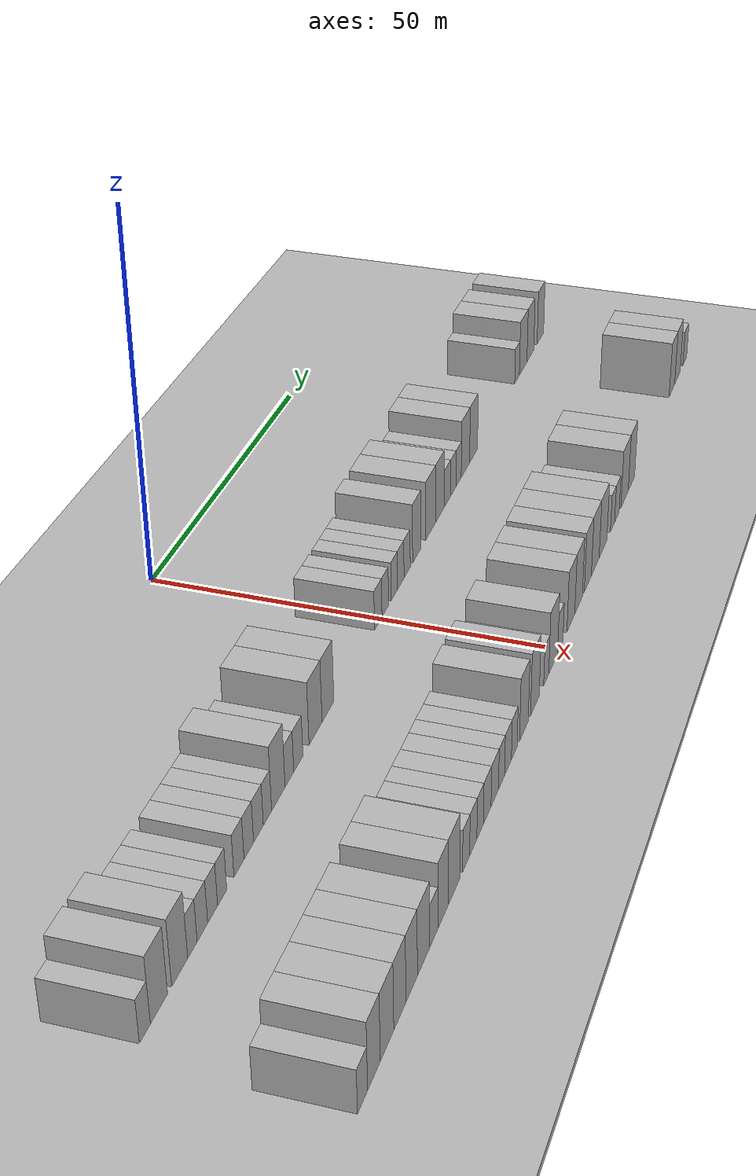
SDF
<sdf version="1.6">
 <world name="default">
  <include><name>ground_plane_1</name><uri>model://HANNAS_ground_plane</uri></include>
  <include>
   <name>ground_plane_2</name>
   <uri>model://HANNAS_ground_plane</uri>
   <pose>100 0 0  0 0 0</pose>
  </include>
  <model name="building_34">
   <static>1</static>
   <pose>25.0000 -71.9568 0 0.000000 0.000000 0.000000</pose>
   <link name="link">
    <pose>0 0 3.00 0 0 0</pose>
    <collision name="collision"><geometry><box><size>10.0000 2.5785 6.0000</size></box></geometry></collision>
    <visual name="visual">
     <cast_shadows>0</cast_shadows>
     <geometry><box><size>10.0000 2.5785 6.0000</size></box></geometry>
     <material>
      <script>
       <uri>model://HANNAS_wall/materials/scripts</uri>
       <uri>model://HANNAS_wall/materials/textures</uri>
       <name>vrc/HANNAS_wall</name>
      </script>
     </material>
    </visual>
   </link>
  </model>
  <model name="building_35">
   <static>1</static>
   <pose>25.0000 -68.5935 0 0.000000 0.000000 0.000000</pose>
   <link name="link">
    <pose>0 0 4.50 0 0 0</pose>
    <collision name="collision"><geometry><box><size>10.0000 4.1481 9.0000</size></box></geometry></collision>
    <visual name="visual">
     <cast_shadows>0</cast_shadows>
     <geometry><box><size>10.0000 4.1481 9.0000</size></box></geometry>
     <material>
      <script>
       <uri>model://HANNAS_wall/materials/scripts</uri>
       <uri>model://HANNAS_wall/materials/textures</uri>
       <name>vrc/HANNAS_wall</name>
      </script>
     </material>
    </visual>
   </link>
  </model>
  <model name="building_36">
   <static>1</static>
   <pose>25.0000 -63.5018 0 0.000000 0.000000 0.000000</pose>
   <link name="link">
    <pose>0 0 4.50 0 0 0</pose>
    <collision name="collision"><geometry><box><size>10.0000 4.0353 9.0000</size></box></geometry></collision>
    <visual name="visual">
     <cast_shadows>0</cast_shadows>
     <geometry><box><size>10.0000 4.0353 9.0000</size></box></geometry>
     <material>
      <script>
       <uri>model://HANNAS_wall/materials/scripts</uri>
       <uri>model://HANNAS_wall/materials/textures</uri>
       <name>vrc/HANNAS_wall</name>
      </script>
     </material>
    </visual>
   </link>
  </model>
  <model name="building_37">
   <static>1</static>
   <pose>25.0000 -60.2751 0 0.000000 0.000000 0.000000</pose>
   <link name="link">
    <pose>0 0 3.00 0 0 0</pose>
    <collision name="collision"><geometry><box><size>10.0000 2.4179 6.0000</size></box></geometry></collision>
    <visual name="visual">
     <cast_shadows>0</cast_shadows>
     <geometry><box><size>10.0000 2.4179 6.0000</size></box></geometry>
     <material>
      <script>
       <uri>model://HANNAS_wall/materials/scripts</uri>
       <uri>model://HANNAS_wall/materials/textures</uri>
       <name>vrc/HANNAS_wall</name>
      </script>
     </material>
    </visual>
   </link>
  </model>
  <model name="building_38">
   <static>1</static>
   <pose>25.0000 -57.6780 0 0.000000 0.000000 0.000000</pose>
   <link name="link">
    <pose>0 0 3.00 0 0 0</pose>
    <collision name="collision"><geometry><box><size>10.0000 2.7763 6.0000</size></box></geometry></collision>
    <visual name="visual">
     <cast_shadows>0</cast_shadows>
     <geometry><box><size>10.0000 2.7763 6.0000</size></box></geometry>
     <material>
      <script>
       <uri>model://HANNAS_wall/materials/scripts</uri>
       <uri>model://HANNAS_wall/materials/textures</uri>
       <name>vrc/HANNAS_wall</name>
      </script>
     </material>
    </visual>
   </link>
  </model>
  <model name="building_39">
   <static>1</static>
   <pose>25.0000 -54.9650 0 0.000000 0.000000 0.000000</pose>
   <link name="link">
    <pose>0 0 3.00 0 0 0</pose>
    <collision name="collision"><geometry><box><size>10.0000 2.6498 6.0000</size></box></geometry></collision>
    <visual name="visual">
     <cast_shadows>0</cast_shadows>
     <geometry><box><size>10.0000 2.6498 6.0000</size></box></geometry>
     <material>
      <script>
       <uri>model://HANNAS_wall/materials/scripts</uri>
       <uri>model://HANNAS_wall/materials/textures</uri>
       <name>vrc/HANNAS_wall</name>
      </script>
     </material>
    </visual>
   </link>
  </model>
  <model name="building_40">
   <static>1</static>
   <pose>25.0000 -52.3989 0 0.000000 0.000000 0.000000</pose>
   <link name="link">
    <pose>0 0 3.00 0 0 0</pose>
    <collision name="collision"><geometry><box><size>10.0000 2.4823 6.0000</size></box></geometry></collision>
    <visual name="visual">
     <cast_shadows>0</cast_shadows>
     <geometry><box><size>10.0000 2.4823 6.0000</size></box></geometry>
     <material>
      <script>
       <uri>model://HANNAS_wall/materials/scripts</uri>
       <uri>model://HANNAS_wall/materials/textures</uri>
       <name>vrc/HANNAS_wall</name>
      </script>
     </material>
    </visual>
   </link>
  </model>
  <model name="building_41">
   <static>1</static>
   <pose>25.0000 -47.7255 0 0.000000 0.000000 0.000000</pose>
   <link name="link">
    <pose>0 0 3.00 0 0 0</pose>
    <collision name="collision"><geometry><box><size>10.0000 2.8646 6.0000</size></box></geometry></collision>
    <visual name="visual">
     <cast_shadows>0</cast_shadows>
     <geometry><box><size>10.0000 2.8646 6.0000</size></box></geometry>
     <material>
      <script>
       <uri>model://HANNAS_wall/materials/scripts</uri>
       <uri>model://HANNAS_wall/materials/textures</uri>
       <name>vrc/HANNAS_wall</name>
      </script>
     </material>
    </visual>
   </link>
  </model>
  <model name="building_42">
   <static>1</static>
   <pose>25.0000 -44.9160 0 0.000000 0.000000 0.000000</pose>
   <link name="link">
    <pose>0 0 3.00 0 0 0</pose>
    <collision name="collision"><geometry><box><size>10.0000 2.7545 6.0000</size></box></geometry></collision>
    <visual name="visual">
     <cast_shadows>0</cast_shadows>
     <geometry><box><size>10.0000 2.7545 6.0000</size></box></geometry>
     <material>
      <script>
       <uri>model://HANNAS_wall/materials/scripts</uri>
       <uri>model://HANNAS_wall/materials/textures</uri>
       <name>vrc/HANNAS_wall</name>
      </script>
     </material>
    </visual>
   </link>
  </model>
  <model name="building_43">
   <static>1</static>
   <pose>25.0000 -42.1074 0 0.000000 0.000000 0.000000</pose>
   <link name="link">
    <pose>0 0 3.00 0 0 0</pose>
    <collision name="collision"><geometry><box><size>10.0000 2.8627 6.0000</size></box></geometry></collision>
    <visual name="visual">
     <cast_shadows>0</cast_shadows>
     <geometry><box><size>10.0000 2.8627 6.0000</size></box></geometry>
     <material>
      <script>
       <uri>model://HANNAS_wall/materials/scripts</uri>
       <uri>model://HANNAS_wall/materials/textures</uri>
       <name>vrc/HANNAS_wall</name>
      </script>
     </material>
    </visual>
   </link>
  </model>
  <model name="building_44">
   <static>1</static>
   <pose>25.0000 -39.4334 0 0.000000 0.000000 0.000000</pose>
   <link name="link">
    <pose>0 0 3.00 0 0 0</pose>
    <collision name="collision"><geometry><box><size>10.0000 2.4853 6.0000</size></box></geometry></collision>
    <visual name="visual">
     <cast_shadows>0</cast_shadows>
     <geometry><box><size>10.0000 2.4853 6.0000</size></box></geometry>
     <material>
      <script>
       <uri>model://HANNAS_wall/materials/scripts</uri>
       <uri>model://HANNAS_wall/materials/textures</uri>
       <name>vrc/HANNAS_wall</name>
      </script>
     </material>
    </visual>
   </link>
  </model>
  <model name="building_45">
   <static>1</static>
   <pose>25.0000 -36.1149 0 0.000000 0.000000 0.000000</pose>
   <link name="link">
    <pose>0 0 4.50 0 0 0</pose>
    <collision name="collision"><geometry><box><size>10.0000 4.1516 9.0000</size></box></geometry></collision>
    <visual name="visual">
     <cast_shadows>0</cast_shadows>
     <geometry><box><size>10.0000 4.1516 9.0000</size></box></geometry>
     <material>
      <script>
       <uri>model://HANNAS_wall/materials/scripts</uri>
       <uri>model://HANNAS_wall/materials/textures</uri>
       <name>vrc/HANNAS_wall</name>
      </script>
     </material>
    </visual>
   </link>
  </model>
  <model name="building_46">
   <static>1</static>
   <pose>25.0000 -32.6743 0 0.000000 0.000000 0.000000</pose>
   <link name="link">
    <pose>0 0 3.00 0 0 0</pose>
    <collision name="collision"><geometry><box><size>10.0000 2.7298 6.0000</size></box></geometry></collision>
    <visual name="visual">
     <cast_shadows>0</cast_shadows>
     <geometry><box><size>10.0000 2.7298 6.0000</size></box></geometry>
     <material>
      <script>
       <uri>model://HANNAS_wall/materials/scripts</uri>
       <uri>model://HANNAS_wall/materials/textures</uri>
       <name>vrc/HANNAS_wall</name>
      </script>
     </material>
    </visual>
   </link>
  </model>
  <model name="building_47">
   <static>1</static>
   <pose>25.0000 -29.8461 0 0.000000 0.000000 0.000000</pose>
   <link name="link">
    <pose>0 0 3.00 0 0 0</pose>
    <collision name="collision"><geometry><box><size>10.0000 2.9266 6.0000</size></box></geometry></collision>
    <visual name="visual">
     <cast_shadows>0</cast_shadows>
     <geometry><box><size>10.0000 2.9266 6.0000</size></box></geometry>
     <material>
      <script>
       <uri>model://HANNAS_wall/materials/scripts</uri>
       <uri>model://HANNAS_wall/materials/textures</uri>
       <name>vrc/HANNAS_wall</name>
      </script>
     </material>
    </visual>
   </link>
  </model>
  <model name="building_48">
   <static>1</static>
   <pose>25.0000 -24.2076 0 0.000000 0.000000 0.000000</pose>
   <link name="link">
    <pose>0 0 4.50 0 0 0</pose>
    <collision name="collision"><geometry><box><size>10.0000 4.3504 9.0000</size></box></geometry></collision>
    <visual name="visual">
     <cast_shadows>0</cast_shadows>
     <geometry><box><size>10.0000 4.3504 9.0000</size></box></geometry>
     <material>
      <script>
       <uri>model://HANNAS_wall/materials/scripts</uri>
       <uri>model://HANNAS_wall/materials/textures</uri>
       <name>vrc/HANNAS_wall</name>
      </script>
     </material>
    </visual>
   </link>
  </model>
  <model name="building_49">
   <static>1</static>
   <pose>25.0000 -20.0120 0 0.000000 0.000000 0.000000</pose>
   <link name="link">
    <pose>0 0 4.50 0 0 0</pose>
    <collision name="collision"><geometry><box><size>10.0000 4.0408 9.0000</size></box></geometry></collision>
    <visual name="visual">
     <cast_shadows>0</cast_shadows>
     <geometry><box><size>10.0000 4.0408 9.0000</size></box></geometry>
     <material>
      <script>
       <uri>model://HANNAS_wall/materials/scripts</uri>
       <uri>model://HANNAS_wall/materials/textures</uri>
       <name>vrc/HANNAS_wall</name>
      </script>
     </material>
    </visual>
   </link>
  </model>
  <model name="building_50">
   <static>1</static>
   <pose>25.0000 -1.6596 0 0.000000 0.000000 0.000000</pose>
   <link name="link">
    <pose>0 0 3.00 0 0 0</pose>
    <collision name="collision"><geometry><box><size>10.0000 2.8880 6.0000</size></box></geometry></collision>
    <visual name="visual">
     <cast_shadows>0</cast_shadows>
     <geometry><box><size>10.0000 2.8880 6.0000</size></box></geometry>
     <material>
      <script>
       <uri>model://HANNAS_wall/materials/scripts</uri>
       <uri>model://HANNAS_wall/materials/textures</uri>
       <name>vrc/HANNAS_wall</name>
      </script>
     </material>
    </visual>
   </link>
  </model>
  <model name="building_51">
   <static>1</static>
   <pose>25.0000 1.0819 0 0.000000 0.000000 0.000000</pose>
   <link name="link">
    <pose>0 0 3.00 0 0 0</pose>
    <collision name="collision"><geometry><box><size>10.0000 2.5949 6.0000</size></box></geometry></collision>
    <visual name="visual">
     <cast_shadows>0</cast_shadows>
     <geometry><box><size>10.0000 2.5949 6.0000</size></box></geometry>
     <material>
      <script>
       <uri>model://HANNAS_wall/materials/scripts</uri>
       <uri>model://HANNAS_wall/materials/textures</uri>
       <name>vrc/HANNAS_wall</name>
      </script>
     </material>
    </visual>
   </link>
  </model>
  <model name="building_52">
   <static>1</static>
   <pose>25.0000 4.6822 0 0.000000 0.000000 0.000000</pose>
   <link name="link">
    <pose>0 0 3.00 0 0 0</pose>
    <collision name="collision"><geometry><box><size>10.0000 2.6058 6.0000</size></box></geometry></collision>
    <visual name="visual">
     <cast_shadows>0</cast_shadows>
     <geometry><box><size>10.0000 2.6058 6.0000</size></box></geometry>
     <material>
      <script>
       <uri>model://HANNAS_wall/materials/scripts</uri>
       <uri>model://HANNAS_wall/materials/textures</uri>
       <name>vrc/HANNAS_wall</name>
      </script>
     </material>
    </visual>
   </link>
  </model>
  <model name="building_53">
   <static>1</static>
   <pose>25.0000 7.3103 0 0.000000 0.000000 0.000000</pose>
   <link name="link">
    <pose>0 0 3.00 0 0 0</pose>
    <collision name="collision"><geometry><box><size>10.0000 2.6505 6.0000</size></box></geometry></collision>
    <visual name="visual">
     <cast_shadows>0</cast_shadows>
     <geometry><box><size>10.0000 2.6505 6.0000</size></box></geometry>
     <material>
      <script>
       <uri>model://HANNAS_wall/materials/scripts</uri>
       <uri>model://HANNAS_wall/materials/textures</uri>
       <name>vrc/HANNAS_wall</name>
      </script>
     </material>
    </visual>
   </link>
  </model>
  <model name="building_54">
   <static>1</static>
   <pose>25.0000 9.9324 0 0.000000 0.000000 0.000000</pose>
   <link name="link">
    <pose>0 0 3.00 0 0 0</pose>
    <collision name="collision"><geometry><box><size>10.0000 2.5936 6.0000</size></box></geometry></collision>
    <visual name="visual">
     <cast_shadows>0</cast_shadows>
     <geometry><box><size>10.0000 2.5936 6.0000</size></box></geometry>
     <material>
      <script>
       <uri>model://HANNAS_wall/materials/scripts</uri>
       <uri>model://HANNAS_wall/materials/textures</uri>
       <name>vrc/HANNAS_wall</name>
      </script>
     </material>
    </visual>
   </link>
  </model>
  <model name="building_55">
   <static>1</static>
   <pose>25.0000 14.0407 0 0.000000 0.000000 0.000000</pose>
   <link name="link">
    <pose>0 0 4.50 0 0 0</pose>
    <collision name="collision"><geometry><box><size>10.0000 3.6229 9.0000</size></box></geometry></collision>
    <visual name="visual">
     <cast_shadows>0</cast_shadows>
     <geometry><box><size>10.0000 3.6229 9.0000</size></box></geometry>
     <material>
      <script>
       <uri>model://HANNAS_wall/materials/scripts</uri>
       <uri>model://HANNAS_wall/materials/textures</uri>
       <name>vrc/HANNAS_wall</name>
      </script>
     </material>
    </visual>
   </link>
  </model>
  <model name="building_56">
   <static>1</static>
   <pose>25.0000 20.0554 0 0.000000 0.000000 0.000000</pose>
   <link name="link">
    <pose>0 0 4.50 0 0 0</pose>
    <collision name="collision"><geometry><box><size>10.0000 4.4065 9.0000</size></box></geometry></collision>
    <visual name="visual">
     <cast_shadows>0</cast_shadows>
     <geometry><box><size>10.0000 4.4065 9.0000</size></box></geometry>
     <material>
      <script>
       <uri>model://HANNAS_wall/materials/scripts</uri>
       <uri>model://HANNAS_wall/materials/textures</uri>
       <name>vrc/HANNAS_wall</name>
      </script>
     </material>
    </visual>
   </link>
  </model>
  <model name="building_57">
   <static>1</static>
   <pose>25.0000 24.2026 0 0.000000 0.000000 0.000000</pose>
   <link name="link">
    <pose>0 0 4.50 0 0 0</pose>
    <collision name="collision"><geometry><box><size>10.0000 3.8880 9.0000</size></box></geometry></collision>
    <visual name="visual">
     <cast_shadows>0</cast_shadows>
     <geometry><box><size>10.0000 3.8880 9.0000</size></box></geometry>
     <material>
      <script>
       <uri>model://HANNAS_wall/materials/scripts</uri>
       <uri>model://HANNAS_wall/materials/textures</uri>
       <name>vrc/HANNAS_wall</name>
      </script>
     </material>
    </visual>
   </link>
  </model>
  <model name="building_58">
   <static>1</static>
   <pose>25.0000 27.6163 0 0.000000 0.000000 0.000000</pose>
   <link name="link">
    <pose>0 0 3.00 0 0 0</pose>
    <collision name="collision"><geometry><box><size>10.0000 2.9393 6.0000</size></box></geometry></collision>
    <visual name="visual">
     <cast_shadows>0</cast_shadows>
     <geometry><box><size>10.0000 2.9393 6.0000</size></box></geometry>
     <material>
      <script>
       <uri>model://HANNAS_wall/materials/scripts</uri>
       <uri>model://HANNAS_wall/materials/textures</uri>
       <name>vrc/HANNAS_wall</name>
      </script>
     </material>
    </visual>
   </link>
  </model>
  <model name="building_59">
   <static>1</static>
   <pose>25.0000 30.3208 0 0.000000 0.000000 0.000000</pose>
   <link name="link">
    <pose>0 0 3.00 0 0 0</pose>
    <collision name="collision"><geometry><box><size>10.0000 2.4696 6.0000</size></box></geometry></collision>
    <visual name="visual">
     <cast_shadows>0</cast_shadows>
     <geometry><box><size>10.0000 2.4696 6.0000</size></box></geometry>
     <material>
      <script>
       <uri>model://HANNAS_wall/materials/scripts</uri>
       <uri>model://HANNAS_wall/materials/textures</uri>
       <name>vrc/HANNAS_wall</name>
      </script>
     </material>
    </visual>
   </link>
  </model>
  <model name="building_60">
   <static>1</static>
   <pose>25.0000 32.8237 0 0.000000 0.000000 0.000000</pose>
   <link name="link">
    <pose>0 0 3.00 0 0 0</pose>
    <collision name="collision"><geometry><box><size>10.0000 2.5363 6.0000</size></box></geometry></collision>
    <visual name="visual">
     <cast_shadows>0</cast_shadows>
     <geometry><box><size>10.0000 2.5363 6.0000</size></box></geometry>
     <material>
      <script>
       <uri>model://HANNAS_wall/materials/scripts</uri>
       <uri>model://HANNAS_wall/materials/textures</uri>
       <name>vrc/HANNAS_wall</name>
      </script>
     </material>
    </visual>
   </link>
  </model>
  <model name="building_61">
   <static>1</static>
   <pose>25.0000 36.1322 0 0.000000 0.000000 0.000000</pose>
   <link name="link">
    <pose>0 0 4.50 0 0 0</pose>
    <collision name="collision"><geometry><box><size>10.0000 4.0808 9.0000</size></box></geometry></collision>
    <visual name="visual">
     <cast_shadows>0</cast_shadows>
     <geometry><box><size>10.0000 4.0808 9.0000</size></box></geometry>
     <material>
      <script>
       <uri>model://HANNAS_wall/materials/scripts</uri>
       <uri>model://HANNAS_wall/materials/textures</uri>
       <name>vrc/HANNAS_wall</name>
      </script>
     </material>
    </visual>
   </link>
  </model>
  <model name="building_62">
   <static>1</static>
   <pose>25.0000 40.1347 0 0.000000 0.000000 0.000000</pose>
   <link name="link">
    <pose>0 0 4.50 0 0 0</pose>
    <collision name="collision"><geometry><box><size>10.0000 3.9243 9.0000</size></box></geometry></collision>
    <visual name="visual">
     <cast_shadows>0</cast_shadows>
     <geometry><box><size>10.0000 3.9243 9.0000</size></box></geometry>
     <material>
      <script>
       <uri>model://HANNAS_wall/materials/scripts</uri>
       <uri>model://HANNAS_wall/materials/textures</uri>
       <name>vrc/HANNAS_wall</name>
      </script>
     </material>
    </visual>
   </link>
  </model>
  <model name="building_63">
   <static>1</static>
   <pose>25.0000 63.0550 0 0.000000 0.000000 0.000000</pose>
   <link name="link">
    <pose>0 0 3.00 0 0 0</pose>
    <collision name="collision"><geometry><box><size>10.0000 2.6388 6.0000</size></box></geometry></collision>
    <visual name="visual">
     <cast_shadows>0</cast_shadows>
     <geometry><box><size>10.0000 2.6388 6.0000</size></box></geometry>
     <material>
      <script>
       <uri>model://HANNAS_wall/materials/scripts</uri>
       <uri>model://HANNAS_wall/materials/textures</uri>
       <name>vrc/HANNAS_wall</name>
      </script>
     </material>
    </visual>
   </link>
  </model>
  <model name="building_64">
   <static>1</static>
   <pose>25.0000 66.5390 0 0.000000 0.000000 0.000000</pose>
   <link name="link">
    <pose>0 0 4.50 0 0 0</pose>
    <collision name="collision"><geometry><box><size>10.0000 4.3291 9.0000</size></box></geometry></collision>
    <visual name="visual">
     <cast_shadows>0</cast_shadows>
     <geometry><box><size>10.0000 4.3291 9.0000</size></box></geometry>
     <material>
      <script>
       <uri>model://HANNAS_wall/materials/scripts</uri>
       <uri>model://HANNAS_wall/materials/textures</uri>
       <name>vrc/HANNAS_wall</name>
      </script>
     </material>
    </visual>
   </link>
  </model>
  <model name="building_65">
   <static>1</static>
   <pose>25.0000 70.6838 0 0.000000 0.000000 0.000000</pose>
   <link name="link">
    <pose>0 0 4.50 0 0 0</pose>
    <collision name="collision"><geometry><box><size>10.0000 3.9604 9.0000</size></box></geometry></collision>
    <visual name="visual">
     <cast_shadows>0</cast_shadows>
     <geometry><box><size>10.0000 3.9604 9.0000</size></box></geometry>
     <material>
      <script>
       <uri>model://HANNAS_wall/materials/scripts</uri>
       <uri>model://HANNAS_wall/materials/textures</uri>
       <name>vrc/HANNAS_wall</name>
      </script>
     </material>
    </visual>
   </link>
  </model>
  <model name="building_66">
   <static>1</static>
   <pose>25.0000 76.6181 0 0.000000 0.000000 0.000000</pose>
   <link name="link">
    <pose>0 0 4.50 0 0 0</pose>
    <collision name="collision"><geometry><box><size>10.0000 3.9082 9.0000</size></box></geometry></collision>
    <visual name="visual">
     <cast_shadows>0</cast_shadows>
     <geometry><box><size>10.0000 3.9082 9.0000</size></box></geometry>
     <material>
      <script>
       <uri>model://HANNAS_wall/materials/scripts</uri>
       <uri>model://HANNAS_wall/materials/textures</uri>
       <name>vrc/HANNAS_wall</name>
      </script>
     </material>
    </visual>
   </link>
  </model>
  <model name="building_135">
   <static>1</static>
   <pose>47.0000 -74.1577 0 0.000000 0.000000 0.000000</pose>
   <link name="link">
    <pose>0 0 3.00 0 0 0</pose>
    <collision name="collision"><geometry><box><size>10.0000 2.8988 6.0000</size></box></geometry></collision>
    <visual name="visual">
     <cast_shadows>0</cast_shadows>
     <geometry><box><size>10.0000 2.8988 6.0000</size></box></geometry>
     <material>
      <script>
       <uri>model://HANNAS_wall/materials/scripts</uri>
       <uri>model://HANNAS_wall/materials/textures</uri>
       <name>vrc/HANNAS_wall</name>
      </script>
     </material>
    </visual>
   </link>
  </model>
  <model name="building_136">
   <static>1</static>
   <pose>47.0000 -70.8549 0 0.000000 0.000000 0.000000</pose>
   <link name="link">
    <pose>0 0 4.50 0 0 0</pose>
    <collision name="collision"><geometry><box><size>10.0000 3.7068 9.0000</size></box></geometry></collision>
    <visual name="visual">
     <cast_shadows>0</cast_shadows>
     <geometry><box><size>10.0000 3.7068 9.0000</size></box></geometry>
     <material>
      <script>
       <uri>model://HANNAS_wall/materials/scripts</uri>
       <uri>model://HANNAS_wall/materials/textures</uri>
       <name>vrc/HANNAS_wall</name>
      </script>
     </material>
    </visual>
   </link>
  </model>
  <model name="building_137">
   <static>1</static>
   <pose>47.0000 -66.9601 0 0.000000 0.000000 0.000000</pose>
   <link name="link">
    <pose>0 0 4.50 0 0 0</pose>
    <collision name="collision"><geometry><box><size>10.0000 4.0827 9.0000</size></box></geometry></collision>
    <visual name="visual">
     <cast_shadows>0</cast_shadows>
     <geometry><box><size>10.0000 4.0827 9.0000</size></box></geometry>
     <material>
      <script>
       <uri>model://HANNAS_wall/materials/scripts</uri>
       <uri>model://HANNAS_wall/materials/textures</uri>
       <name>vrc/HANNAS_wall</name>
      </script>
     </material>
    </visual>
   </link>
  </model>
  <model name="building_138">
   <static>1</static>
   <pose>47.0000 -63.0305 0 0.000000 0.000000 0.000000</pose>
   <link name="link">
    <pose>0 0 4.50 0 0 0</pose>
    <collision name="collision"><geometry><box><size>10.0000 3.7766 9.0000</size></box></geometry></collision>
    <visual name="visual">
     <cast_shadows>0</cast_shadows>
     <geometry><box><size>10.0000 3.7766 9.0000</size></box></geometry>
     <material>
      <script>
       <uri>model://HANNAS_wall/materials/scripts</uri>
       <uri>model://HANNAS_wall/materials/textures</uri>
       <name>vrc/HANNAS_wall</name>
      </script>
     </material>
    </visual>
   </link>
  </model>
  <model name="building_139">
   <static>1</static>
   <pose>47.0000 -59.2882 0 0.000000 0.000000 0.000000</pose>
   <link name="link">
    <pose>0 0 4.50 0 0 0</pose>
    <collision name="collision"><geometry><box><size>10.0000 3.7078 9.0000</size></box></geometry></collision>
    <visual name="visual">
     <cast_shadows>0</cast_shadows>
     <geometry><box><size>10.0000 3.7078 9.0000</size></box></geometry>
     <material>
      <script>
       <uri>model://HANNAS_wall/materials/scripts</uri>
       <uri>model://HANNAS_wall/materials/textures</uri>
       <name>vrc/HANNAS_wall</name>
      </script>
     </material>
    </visual>
   </link>
  </model>
  <model name="building_140">
   <static>1</static>
   <pose>47.0000 -55.4198 0 0.000000 0.000000 0.000000</pose>
   <link name="link">
    <pose>0 0 4.50 0 0 0</pose>
    <collision name="collision"><geometry><box><size>10.0000 4.0291 9.0000</size></box></geometry></collision>
    <visual name="visual">
     <cast_shadows>0</cast_shadows>
     <geometry><box><size>10.0000 4.0291 9.0000</size></box></geometry>
     <material>
      <script>
       <uri>model://HANNAS_wall/materials/scripts</uri>
       <uri>model://HANNAS_wall/materials/textures</uri>
       <name>vrc/HANNAS_wall</name>
      </script>
     </material>
    </visual>
   </link>
  </model>
  <model name="building_141">
   <static>1</static>
   <pose>47.0000 -52.0199 0 0.000000 0.000000 0.000000</pose>
   <link name="link">
    <pose>0 0 3.00 0 0 0</pose>
    <collision name="collision"><geometry><box><size>10.0000 2.7707 6.0000</size></box></geometry></collision>
    <visual name="visual">
     <cast_shadows>0</cast_shadows>
     <geometry><box><size>10.0000 2.7707 6.0000</size></box></geometry>
     <material>
      <script>
       <uri>model://HANNAS_wall/materials/scripts</uri>
       <uri>model://HANNAS_wall/materials/textures</uri>
       <name>vrc/HANNAS_wall</name>
      </script>
     </material>
    </visual>
   </link>
  </model>
  <model name="building_142">
   <static>1</static>
   <pose>47.0000 -48.8300 0 0.000000 0.000000 0.000000</pose>
   <link name="link">
    <pose>0 0 4.50 0 0 0</pose>
    <collision name="collision"><geometry><box><size>10.0000 3.6091 9.0000</size></box></geometry></collision>
    <visual name="visual">
     <cast_shadows>0</cast_shadows>
     <geometry><box><size>10.0000 3.6091 9.0000</size></box></geometry>
     <material>
      <script>
       <uri>model://HANNAS_wall/materials/scripts</uri>
       <uri>model://HANNAS_wall/materials/textures</uri>
       <name>vrc/HANNAS_wall</name>
      </script>
     </material>
    </visual>
   </link>
  </model>
  <model name="building_143">
   <static>1</static>
   <pose>47.0000 -44.9022 0 0.000000 0.000000 0.000000</pose>
   <link name="link">
    <pose>0 0 4.50 0 0 0</pose>
    <collision name="collision"><geometry><box><size>10.0000 4.2464 9.0000</size></box></geometry></collision>
    <visual name="visual">
     <cast_shadows>0</cast_shadows>
     <geometry><box><size>10.0000 4.2464 9.0000</size></box></geometry>
     <material>
      <script>
       <uri>model://HANNAS_wall/materials/scripts</uri>
       <uri>model://HANNAS_wall/materials/textures</uri>
       <name>vrc/HANNAS_wall</name>
      </script>
     </material>
    </visual>
   </link>
  </model>
  <model name="building_144">
   <static>1</static>
   <pose>47.0000 -40.4671 0 0.000000 0.000000 0.000000</pose>
   <link name="link">
    <pose>0 0 3.00 0 0 0</pose>
    <collision name="collision"><geometry><box><size>10.0000 2.6238 6.0000</size></box></geometry></collision>
    <visual name="visual">
     <cast_shadows>0</cast_shadows>
     <geometry><box><size>10.0000 2.6238 6.0000</size></box></geometry>
     <material>
      <script>
       <uri>model://HANNAS_wall/materials/scripts</uri>
       <uri>model://HANNAS_wall/materials/textures</uri>
       <name>vrc/HANNAS_wall</name>
      </script>
     </material>
    </visual>
   </link>
  </model>
  <model name="building_145">
   <static>1</static>
   <pose>47.0000 -37.7925 0 0.000000 0.000000 0.000000</pose>
   <link name="link">
    <pose>0 0 3.00 0 0 0</pose>
    <collision name="collision"><geometry><box><size>10.0000 2.7254 6.0000</size></box></geometry></collision>
    <visual name="visual">
     <cast_shadows>0</cast_shadows>
     <geometry><box><size>10.0000 2.7254 6.0000</size></box></geometry>
     <material>
      <script>
       <uri>model://HANNAS_wall/materials/scripts</uri>
       <uri>model://HANNAS_wall/materials/textures</uri>
       <name>vrc/HANNAS_wall</name>
      </script>
     </material>
    </visual>
   </link>
  </model>
  <model name="building_146">
   <static>1</static>
   <pose>47.0000 -35.1523 0 0.000000 0.000000 0.000000</pose>
   <link name="link">
    <pose>0 0 3.00 0 0 0</pose>
    <collision name="collision"><geometry><box><size>10.0000 2.5552 6.0000</size></box></geometry></collision>
    <visual name="visual">
     <cast_shadows>0</cast_shadows>
     <geometry><box><size>10.0000 2.5552 6.0000</size></box></geometry>
     <material>
      <script>
       <uri>model://HANNAS_wall/materials/scripts</uri>
       <uri>model://HANNAS_wall/materials/textures</uri>
       <name>vrc/HANNAS_wall</name>
      </script>
     </material>
    </visual>
   </link>
  </model>
  <model name="building_147">
   <static>1</static>
   <pose>47.0000 -32.3882 0 0.000000 0.000000 0.000000</pose>
   <link name="link">
    <pose>0 0 3.00 0 0 0</pose>
    <collision name="collision"><geometry><box><size>10.0000 2.9729 6.0000</size></box></geometry></collision>
    <visual name="visual">
     <cast_shadows>0</cast_shadows>
     <geometry><box><size>10.0000 2.9729 6.0000</size></box></geometry>
     <material>
      <script>
       <uri>model://HANNAS_wall/materials/scripts</uri>
       <uri>model://HANNAS_wall/materials/textures</uri>
       <name>vrc/HANNAS_wall</name>
      </script>
     </material>
    </visual>
   </link>
  </model>
  <model name="building_148">
   <static>1</static>
   <pose>47.0000 -29.4051 0 0.000000 0.000000 0.000000</pose>
   <link name="link">
    <pose>0 0 3.00 0 0 0</pose>
    <collision name="collision"><geometry><box><size>10.0000 2.9932 6.0000</size></box></geometry></collision>
    <visual name="visual">
     <cast_shadows>0</cast_shadows>
     <geometry><box><size>10.0000 2.9932 6.0000</size></box></geometry>
     <material>
      <script>
       <uri>model://HANNAS_wall/materials/scripts</uri>
       <uri>model://HANNAS_wall/materials/textures</uri>
       <name>vrc/HANNAS_wall</name>
      </script>
     </material>
    </visual>
   </link>
  </model>
  <model name="building_149">
   <static>1</static>
   <pose>47.0000 -26.6631 0 0.000000 0.000000 0.000000</pose>
   <link name="link">
    <pose>0 0 3.00 0 0 0</pose>
    <collision name="collision"><geometry><box><size>10.0000 2.4908 6.0000</size></box></geometry></collision>
    <visual name="visual">
     <cast_shadows>0</cast_shadows>
     <geometry><box><size>10.0000 2.4908 6.0000</size></box></geometry>
     <material>
      <script>
       <uri>model://HANNAS_wall/materials/scripts</uri>
       <uri>model://HANNAS_wall/materials/textures</uri>
       <name>vrc/HANNAS_wall</name>
      </script>
     </material>
    </visual>
   </link>
  </model>
  <model name="building_150">
   <static>1</static>
   <pose>47.0000 -23.9814 0 0.000000 0.000000 0.000000</pose>
   <link name="link">
    <pose>0 0 3.00 0 0 0</pose>
    <collision name="collision"><geometry><box><size>10.0000 2.8727 6.0000</size></box></geometry></collision>
    <visual name="visual">
     <cast_shadows>0</cast_shadows>
     <geometry><box><size>10.0000 2.8727 6.0000</size></box></geometry>
     <material>
      <script>
       <uri>model://HANNAS_wall/materials/scripts</uri>
       <uri>model://HANNAS_wall/materials/textures</uri>
       <name>vrc/HANNAS_wall</name>
      </script>
     </material>
    </visual>
   </link>
  </model>
  <model name="building_151">
   <static>1</static>
   <pose>47.0000 -21.3157 0 0.000000 0.000000 0.000000</pose>
   <link name="link">
    <pose>0 0 3.00 0 0 0</pose>
    <collision name="collision"><geometry><box><size>10.0000 2.4587 6.0000</size></box></geometry></collision>
    <visual name="visual">
     <cast_shadows>0</cast_shadows>
     <geometry><box><size>10.0000 2.4587 6.0000</size></box></geometry>
     <material>
      <script>
       <uri>model://HANNAS_wall/materials/scripts</uri>
       <uri>model://HANNAS_wall/materials/textures</uri>
       <name>vrc/HANNAS_wall</name>
      </script>
     </material>
    </visual>
   </link>
  </model>
  <model name="building_152">
   <static>1</static>
   <pose>47.0000 -17.1603 0 0.000000 0.000000 0.000000</pose>
   <link name="link">
    <pose>0 0 4.50 0 0 0</pose>
    <collision name="collision"><geometry><box><size>10.0000 3.8521 9.0000</size></box></geometry></collision>
    <visual name="visual">
     <cast_shadows>0</cast_shadows>
     <geometry><box><size>10.0000 3.8521 9.0000</size></box></geometry>
     <material>
      <script>
       <uri>model://HANNAS_wall/materials/scripts</uri>
       <uri>model://HANNAS_wall/materials/textures</uri>
       <name>vrc/HANNAS_wall</name>
      </script>
     </material>
    </visual>
   </link>
  </model>
  <model name="building_153">
   <static>1</static>
   <pose>47.0000 -12.2465 0 0.000000 0.000000 0.000000</pose>
   <link name="link">
    <pose>0 0 4.50 0 0 0</pose>
    <collision name="collision"><geometry><box><size>10.0000 3.9756 9.0000</size></box></geometry></collision>
    <visual name="visual">
     <cast_shadows>0</cast_shadows>
     <geometry><box><size>10.0000 3.9756 9.0000</size></box></geometry>
     <material>
      <script>
       <uri>model://HANNAS_wall/materials/scripts</uri>
       <uri>model://HANNAS_wall/materials/textures</uri>
       <name>vrc/HANNAS_wall</name>
      </script>
     </material>
    </visual>
   </link>
  </model>
  <model name="building_154">
   <static>1</static>
   <pose>47.0000 -7.0465 0 0.000000 0.000000 0.000000</pose>
   <link name="link">
    <pose>0 0 3.00 0 0 0</pose>
    <collision name="collision"><geometry><box><size>10.0000 2.4245 6.0000</size></box></geometry></collision>
    <visual name="visual">
     <cast_shadows>0</cast_shadows>
     <geometry><box><size>10.0000 2.4245 6.0000</size></box></geometry>
     <material>
      <script>
       <uri>model://HANNAS_wall/materials/scripts</uri>
       <uri>model://HANNAS_wall/materials/textures</uri>
       <name>vrc/HANNAS_wall</name>
      </script>
     </material>
    </visual>
   </link>
  </model>
  <model name="building_155">
   <static>1</static>
   <pose>47.0000 -3.7290 0 0.000000 0.000000 0.000000</pose>
   <link name="link">
    <pose>0 0 4.50 0 0 0</pose>
    <collision name="collision"><geometry><box><size>10.0000 4.2106 9.0000</size></box></geometry></collision>
    <visual name="visual">
     <cast_shadows>0</cast_shadows>
     <geometry><box><size>10.0000 4.2106 9.0000</size></box></geometry>
     <material>
      <script>
       <uri>model://HANNAS_wall/materials/scripts</uri>
       <uri>model://HANNAS_wall/materials/textures</uri>
       <name>vrc/HANNAS_wall</name>
      </script>
     </material>
    </visual>
   </link>
  </model>
  <model name="building_156">
   <static>1</static>
   <pose>47.0000 -0.3167 0 0.000000 0.000000 0.000000</pose>
   <link name="link">
    <pose>0 0 3.00 0 0 0</pose>
    <collision name="collision"><geometry><box><size>10.0000 2.6139 6.0000</size></box></geometry></collision>
    <visual name="visual">
     <cast_shadows>0</cast_shadows>
     <geometry><box><size>10.0000 2.6139 6.0000</size></box></geometry>
     <material>
      <script>
       <uri>model://HANNAS_wall/materials/scripts</uri>
       <uri>model://HANNAS_wall/materials/textures</uri>
       <name>vrc/HANNAS_wall</name>
      </script>
     </material>
    </visual>
   </link>
  </model>
  <model name="building_157">
   <static>1</static>
   <pose>47.0000 4.9644 0 0.000000 0.000000 0.000000</pose>
   <link name="link">
    <pose>0 0 4.50 0 0 0</pose>
    <collision name="collision"><geometry><box><size>10.0000 3.9484 9.0000</size></box></geometry></collision>
    <visual name="visual">
     <cast_shadows>0</cast_shadows>
     <geometry><box><size>10.0000 3.9484 9.0000</size></box></geometry>
     <material>
      <script>
       <uri>model://HANNAS_wall/materials/scripts</uri>
       <uri>model://HANNAS_wall/materials/textures</uri>
       <name>vrc/HANNAS_wall</name>
      </script>
     </material>
    </visual>
   </link>
  </model>
  <model name="building_158">
   <static>1</static>
   <pose>47.0000 8.9166 0 0.000000 0.000000 0.000000</pose>
   <link name="link">
    <pose>0 0 4.50 0 0 0</pose>
    <collision name="collision"><geometry><box><size>10.0000 3.9561 9.0000</size></box></geometry></collision>
    <visual name="visual">
     <cast_shadows>0</cast_shadows>
     <geometry><box><size>10.0000 3.9561 9.0000</size></box></geometry>
     <material>
      <script>
       <uri>model://HANNAS_wall/materials/scripts</uri>
       <uri>model://HANNAS_wall/materials/textures</uri>
       <name>vrc/HANNAS_wall</name>
      </script>
     </material>
    </visual>
   </link>
  </model>
  <model name="building_159">
   <static>1</static>
   <pose>47.0000 13.7910 0 0.000000 0.000000 0.000000</pose>
   <link name="link">
    <pose>0 0 4.50 0 0 0</pose>
    <collision name="collision"><geometry><box><size>10.0000 3.7926 9.0000</size></box></geometry></collision>
    <visual name="visual">
     <cast_shadows>0</cast_shadows>
     <geometry><box><size>10.0000 3.7926 9.0000</size></box></geometry>
     <material>
      <script>
       <uri>model://HANNAS_wall/materials/scripts</uri>
       <uri>model://HANNAS_wall/materials/textures</uri>
       <name>vrc/HANNAS_wall</name>
      </script>
     </material>
    </visual>
   </link>
  </model>
  <model name="building_160">
   <static>1</static>
   <pose>47.0000 17.8214 0 0.000000 0.000000 0.000000</pose>
   <link name="link">
    <pose>0 0 4.50 0 0 0</pose>
    <collision name="collision"><geometry><box><size>10.0000 4.2682 9.0000</size></box></geometry></collision>
    <visual name="visual">
     <cast_shadows>0</cast_shadows>
     <geometry><box><size>10.0000 4.2682 9.0000</size></box></geometry>
     <material>
      <script>
       <uri>model://HANNAS_wall/materials/scripts</uri>
       <uri>model://HANNAS_wall/materials/textures</uri>
       <name>vrc/HANNAS_wall</name>
      </script>
     </material>
    </visual>
   </link>
  </model>
  <model name="building_161">
   <static>1</static>
   <pose>47.0000 22.1279 0 0.000000 0.000000 0.000000</pose>
   <link name="link">
    <pose>0 0 4.50 0 0 0</pose>
    <collision name="collision"><geometry><box><size>10.0000 4.3446 9.0000</size></box></geometry></collision>
    <visual name="visual">
     <cast_shadows>0</cast_shadows>
     <geometry><box><size>10.0000 4.3446 9.0000</size></box></geometry>
     <material>
      <script>
       <uri>model://HANNAS_wall/materials/scripts</uri>
       <uri>model://HANNAS_wall/materials/textures</uri>
       <name>vrc/HANNAS_wall</name>
      </script>
     </material>
    </visual>
   </link>
  </model>
  <model name="building_162">
   <static>1</static>
   <pose>47.0000 27.5380 0 0.000000 0.000000 0.000000</pose>
   <link name="link">
    <pose>0 0 3.00 0 0 0</pose>
    <collision name="collision"><geometry><box><size>10.0000 2.4757 6.0000</size></box></geometry></collision>
    <visual name="visual">
     <cast_shadows>0</cast_shadows>
     <geometry><box><size>10.0000 2.4757 6.0000</size></box></geometry>
     <material>
      <script>
       <uri>model://HANNAS_wall/materials/scripts</uri>
       <uri>model://HANNAS_wall/materials/textures</uri>
       <name>vrc/HANNAS_wall</name>
      </script>
     </material>
    </visual>
   </link>
  </model>
  <model name="building_163">
   <static>1</static>
   <pose>47.0000 30.1264 0 0.000000 0.000000 0.000000</pose>
   <link name="link">
    <pose>0 0 3.00 0 0 0</pose>
    <collision name="collision"><geometry><box><size>10.0000 2.7009 6.0000</size></box></geometry></collision>
    <visual name="visual">
     <cast_shadows>0</cast_shadows>
     <geometry><box><size>10.0000 2.7009 6.0000</size></box></geometry>
     <material>
      <script>
       <uri>model://HANNAS_wall/materials/scripts</uri>
       <uri>model://HANNAS_wall/materials/textures</uri>
       <name>vrc/HANNAS_wall</name>
      </script>
     </material>
    </visual>
   </link>
  </model>
  <model name="building_164">
   <static>1</static>
   <pose>47.0000 34.7181 0 0.000000 0.000000 0.000000</pose>
   <link name="link">
    <pose>0 0 4.50 0 0 0</pose>
    <collision name="collision"><geometry><box><size>10.0000 4.4826 9.0000</size></box></geometry></collision>
    <visual name="visual">
     <cast_shadows>0</cast_shadows>
     <geometry><box><size>10.0000 4.4826 9.0000</size></box></geometry>
     <material>
      <script>
       <uri>model://HANNAS_wall/materials/scripts</uri>
       <uri>model://HANNAS_wall/materials/textures</uri>
       <name>vrc/HANNAS_wall</name>
      </script>
     </material>
    </visual>
   </link>
  </model>
  <model name="building_165">
   <static>1</static>
   <pose>47.0000 38.9727 0 0.000000 0.000000 0.000000</pose>
   <link name="link">
    <pose>0 0 4.50 0 0 0</pose>
    <collision name="collision"><geometry><box><size>10.0000 4.0265 9.0000</size></box></geometry></collision>
    <visual name="visual">
     <cast_shadows>0</cast_shadows>
     <geometry><box><size>10.0000 4.0265 9.0000</size></box></geometry>
     <material>
      <script>
       <uri>model://HANNAS_wall/materials/scripts</uri>
       <uri>model://HANNAS_wall/materials/textures</uri>
       <name>vrc/HANNAS_wall</name>
      </script>
     </material>
    </visual>
   </link>
  </model>
  <model name="building_166">
   <static>1</static>
   <pose>47.0000 66.0327 0 0.000000 0.000000 0.000000</pose>
   <link name="link">
    <pose>0 0 4.50 0 0 0</pose>
    <collision name="collision"><geometry><box><size>10.0000 4.0312 9.0000</size></box></geometry></collision>
    <visual name="visual">
     <cast_shadows>0</cast_shadows>
     <geometry><box><size>10.0000 4.0312 9.0000</size></box></geometry>
     <material>
      <script>
       <uri>model://HANNAS_wall/materials/scripts</uri>
       <uri>model://HANNAS_wall/materials/textures</uri>
       <name>vrc/HANNAS_wall</name>
      </script>
     </material>
    </visual>
   </link>
  </model>
  <model name="building_167">
   <static>1</static>
   <pose>47.0000 70.0597 0 0.000000 0.000000 0.000000</pose>
   <link name="link">
    <pose>0 0 4.50 0 0 0</pose>
    <collision name="collision"><geometry><box><size>10.0000 4.0228 9.0000</size></box></geometry></collision>
    <visual name="visual">
     <cast_shadows>0</cast_shadows>
     <geometry><box><size>10.0000 4.0228 9.0000</size></box></geometry>
     <material>
      <script>
       <uri>model://HANNAS_wall/materials/scripts</uri>
       <uri>model://HANNAS_wall/materials/textures</uri>
       <name>vrc/HANNAS_wall</name>
      </script>
     </material>
    </visual>
   </link>
  </model>
  <model name="building_168">
   <static>1</static>
   <pose>47.0000 75.5599 0 0.000000 0.000000 0.000000</pose>
   <link name="link">
    <pose>0 0 3.00 0 0 0</pose>
    <collision name="collision"><geometry><box><size>10.0000 2.9775 6.0000</size></box></geometry></collision>
    <visual name="visual">
     <cast_shadows>0</cast_shadows>
     <geometry><box><size>10.0000 2.9775 6.0000</size></box></geometry>
     <material>
      <script>
       <uri>model://HANNAS_wall/materials/scripts</uri>
       <uri>model://HANNAS_wall/materials/textures</uri>
       <name>vrc/HANNAS_wall</name>
      </script>
     </material>
    </visual>
   </link>
  </model>
 </world>
</sdf>
